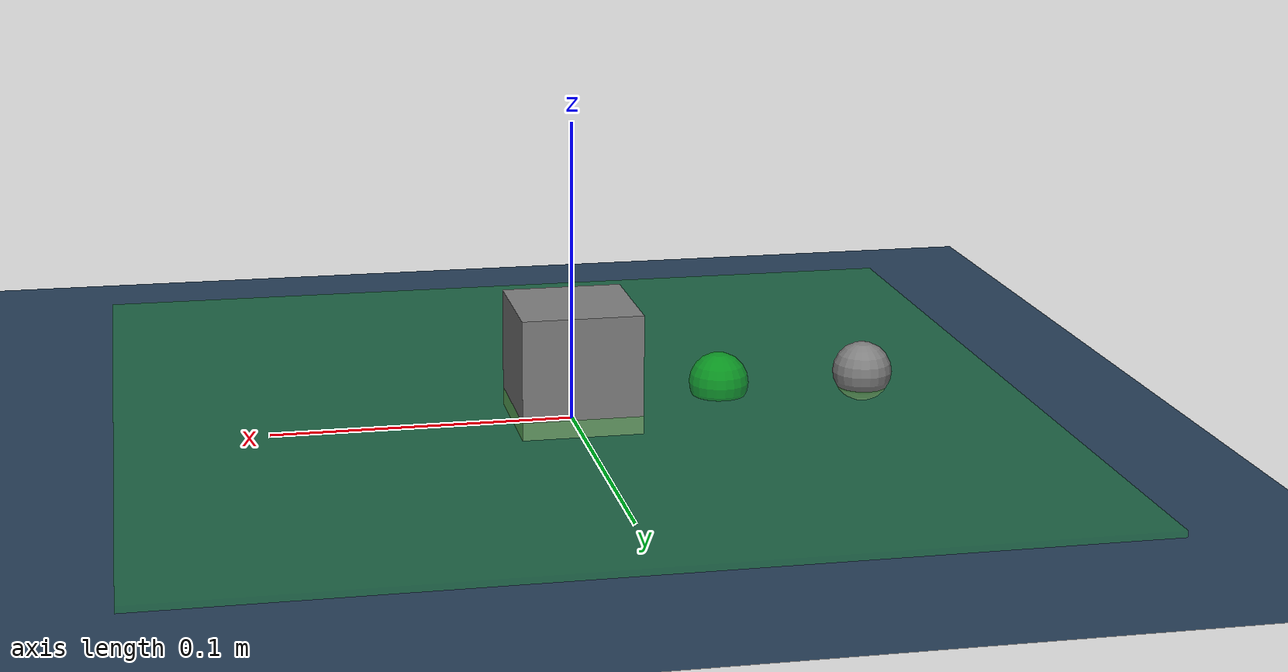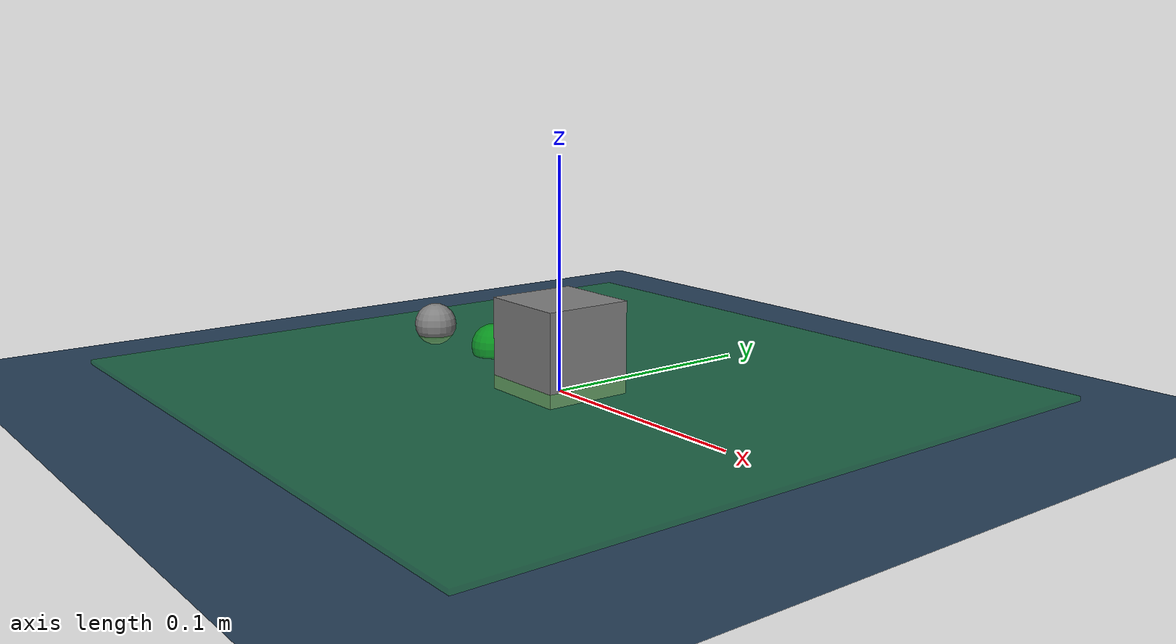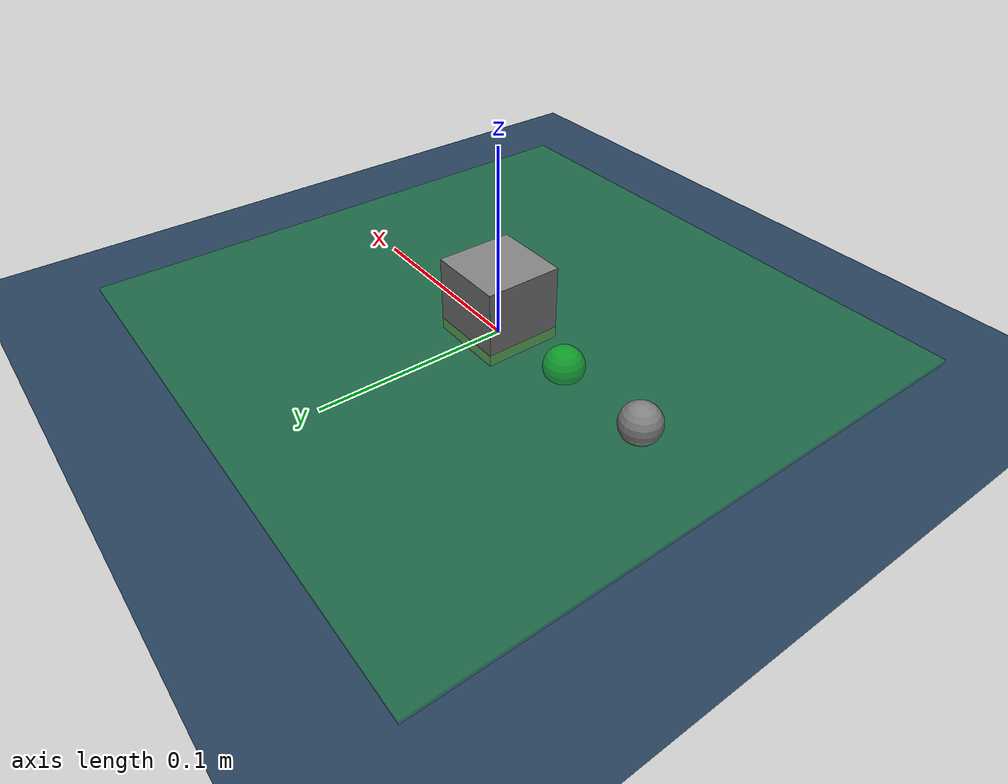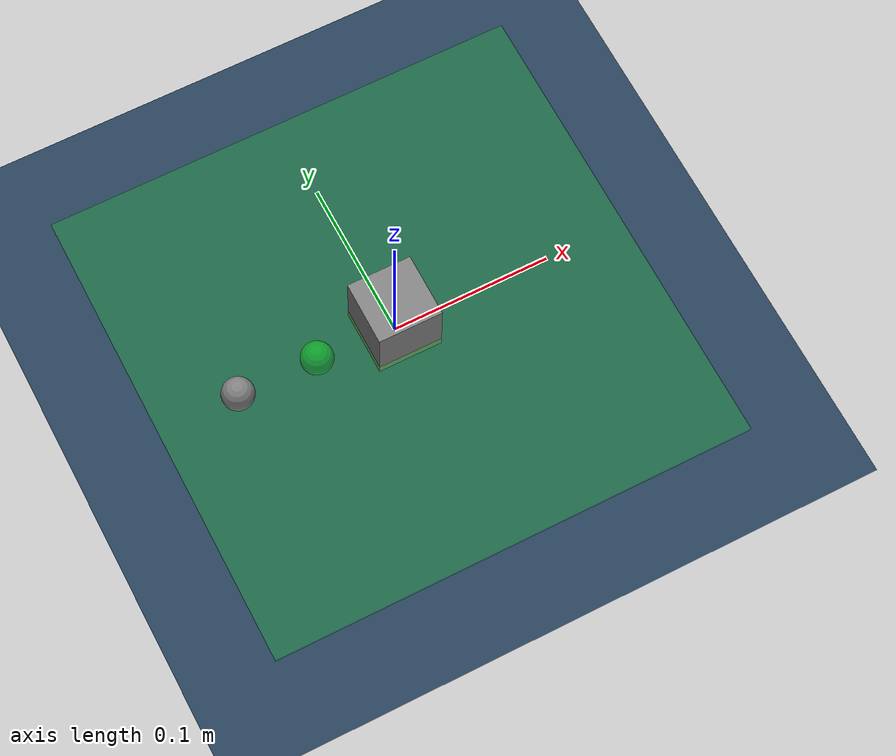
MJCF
<mujoco model="particle_box_scene">
  <!-- Model that includes lighting and a ground. -->
  <include file="particle_box.xml"/>

  <statistic center="0 0 0" extent="0.9"/>

  <visual>
    <headlight diffuse="0.6 0.6 0.6" ambient="0.3 0.3 0.3" specular="0 0 0"/>
    <rgba haze="0.15 0.25 0.35 1"/>
  </visual>

  <asset>
    <texture type="skybox" builtin="gradient" rgb1="0.3 0.5 0.7" rgb2="0 0 0" width="512" height="3072"/>
    <texture type="2d" name="groundplane" builtin="checker" mark="edge" rgb1="0.2 0.3 0.4" rgb2="0.1 0.2 0.3"
      markrgb="0.8 0.8 0.8" width="300" height="300"/>
    <material name="groundplane" texture="groundplane" texuniform="true" texrepeat="5 5" reflectance="0.2"/>
  </asset>

  <worldbody>
    <light pos="0 0 1"/>
    <geom name="floor" size="0 0 .125" type="plane" material="groundplane"  contype="1"/>
  </worldbody>
</mujoco>

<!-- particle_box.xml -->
<mujoco model="particle_box">
  <option timestep="0.005" iterations="10" ls_iterations="10" integrator="implicitfast">
    <flag eulerdamp="disable"/>
  </option>
  <default>
    <joint type="hinge" axis="0 0 1" limited="true" range="-.4 .4" damping="0" />
    <motor gear=".1" ctrlrange="-1 1" ctrllimited="true" />
    <default class="translation">
      <position kp="20" kv="10" ctrlrange="-0.4 0.4"/>
    </default>
    <geom friction="0.9"/>
  </default>

  <worldbody>
    <site name="reference" pos="0 0 0.01" size="0.01" rgba="0 0 0 0.0"/>

    <!-- Goal for the particle -->
    <body name="goal" mocap="true" pos="-0.05 0.0 0.01" quat="1 0 0 0">
      <geom type="sphere" size=".01" contype="0" conaffinity="0" rgba="0 1 0 .5" />
    </body>

    <!-- Safe area for the box -->
    <body name="safe_area" pos="0 0 0.005">
      <geom name="safe_area" type="box" size="0.15 0.15 0.001" rgba="0 1 0 0.2" contype="0" conaffinity="0"/>
    </body>

    <!-- The box that should stay in the safe area -->
    <body name="box" pos="0.0 0 0.02">
      <freejoint name="box_joint"/>
      <geom type="box" name="box" size="0.02 0.02 0.02" condim="3"
        friction="0.6" contype="2" conaffinity="1" solref="0.02 1" priority="1"
        mass="0.15"/>
        <site name="box_site" pos="0 0 0" size="0.01" />
    </body>

    <!-- The particle that needs to reach the goal -->
    <body name="pointmass" pos="-0.1 0.0 0.011">
      <joint name="root_x" type="slide" pos="0 0 0" axis="1 0 0" />
      <joint name="root_y" type="slide" pos="0 0 0" axis="0 1 0" />
      <geom name="pointmass" type="sphere" size=".01" mass=".3" />
      <site name="particle" pos="0 0 0" size="0.01" />
    </body>
  </worldbody>

  <actuator>
    <position name="x" site="particle" refsite="reference" gear="1 0 0 0 0 0" class="translation"/>
    <position name="y" site="particle" refsite="reference" gear="0 1 0 0 0 0" class="translation"/>
  </actuator>

  <sensor>
    <framepos name="box_position" objtype="site" objname="box_site"/>
  </sensor>
</mujoco>
